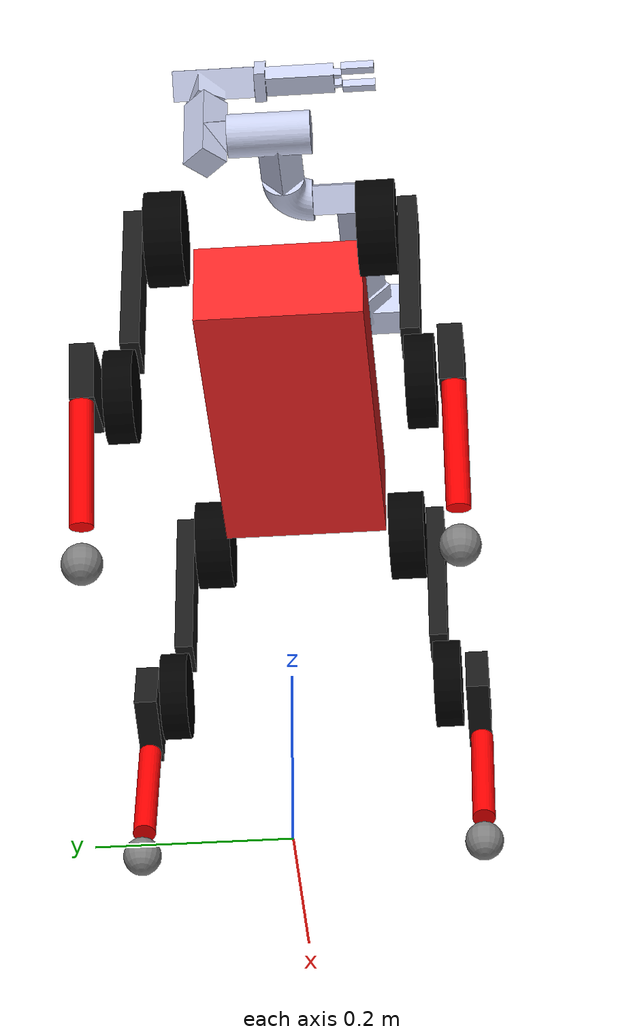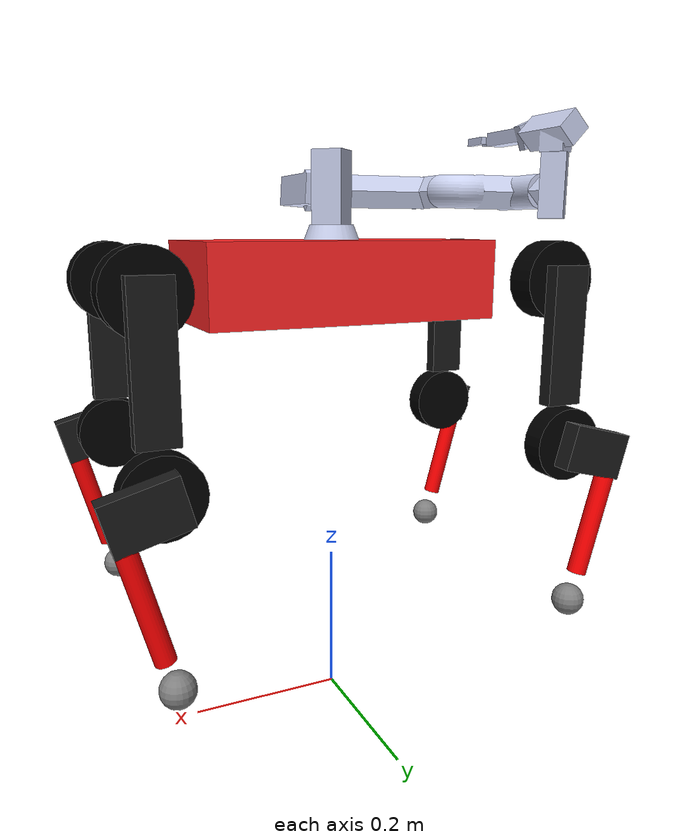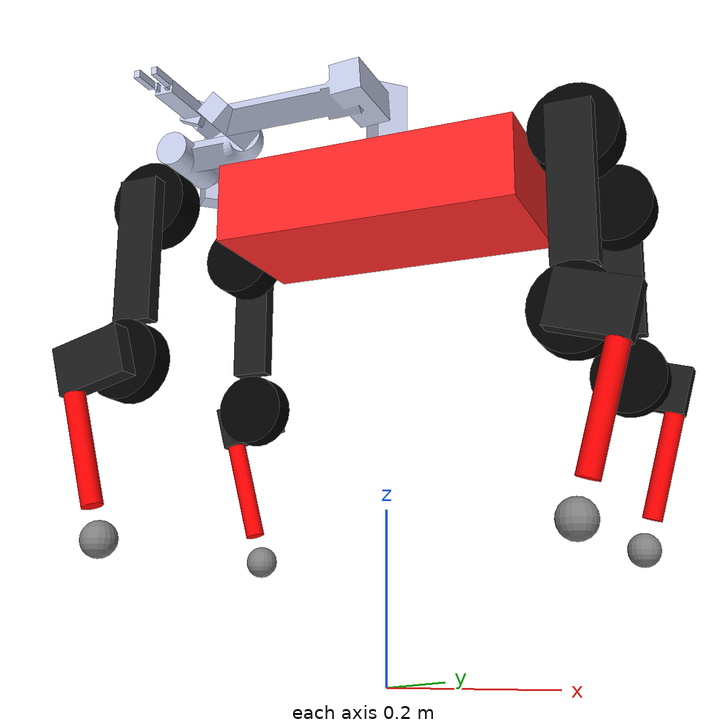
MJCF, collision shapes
<mujoco model="bigreddog">
  <compiler angle="radian" meshdir="meshes"/>

  <default>
    <default class="bigreddog">
      <geom friction="0.4" margin="0.001" condim="1"/>
      <joint damping="0.1" armature="0.01" frictionloss="0.2"/>
      <motor ctrlrange="-20 20"/>
      <default class="hip">
        <joint axis="1 0 0" range="-1.0472 1.0472"/>
        <motor ctrlrange="-20 20"/>
      </default>
      <default class="front_thigh">
        <joint axis="0 1 0" range="0.1 1.57"/>
        <motor ctrlrange="-20 20"/>
      </default>
      <default class="rear_thigh">
        <joint axis="0 1 0" range="-1.57 -0.1"/>
        <motor ctrlrange="-20 20"/>
      </default>
      <default class="front_calf">
        <joint axis="0 1 0" range="-2.7227 -0.3"/>
        <motor ctrlrange="-80 80"/>
      </default>
      <default class="rear_calf">
        <joint axis="0 1 0" range="0.3 2.7227"/>
        <motor ctrlrange="-80 80"/>
      </default>
      <default class="visual">
        <geom type="mesh" contype="0" conaffinity="0" group="2"
          rgba="0.752941 0.752941 0.752941 1"
          density="0"
        />
      </default>
      <default class="collision">
        <geom group="2" type="mesh" rgba="1 0 0 0.3" />
        <default class="foot">
          <geom size="0.022" priority="1" condim="6"
            friction="0.4 0.02 0.01"/>
        </default>
      </default>
    </default>
  </default>
  <asset>
    <mesh name="base_link" file="base_link.STL"/>
    <mesh name="FL_hip_motor" file="FL_hip_motor.STL"/>
    <mesh name="FL_hip_link" file="FL_hip_link.STL"/>
    <mesh name="FL_thigh_motor" file="FL_thigh_motor.STL"/>
    <mesh name="FL_thigh_link" file="FL_thigh_link.STL"/>
    <mesh name="FL_calf_motor" file="FL_calf_motor.STL"/>
    <mesh name="FL_calf_link" file="FL_calf_link.STL"/>
    <mesh name="FR_hip_motor" file="FR_hip_motor.STL"/>
    <mesh name="FR_hip_link" file="FR_hip_link.STL"/>
    <mesh name="FR_thigh_motor" file="FR_thigh_motor.STL"/>
    <mesh name="FR_thigh_link" file="FR_thigh_link.STL"/>
    <mesh name="FR_calf_motor" file="FR_calf_motor.STL"/>
    <mesh name="FR_calf_link" file="FR_calf_link.STL"/>
    <mesh name="RL_hip_motor" file="RL_hip_motor.STL"/>
    <mesh name="RL_hip_link" file="RL_hip_link.STL"/>
    <mesh name="RL_thigh_motor" file="RL_thigh_motor.STL"/>
    <mesh name="RL_thigh_link" file="RL_thigh_link.STL"/>
    <mesh name="RL_calf_motor" file="RL_calf_motor.STL"/>
    <mesh name="RL_calf_link" file="RL_calf_link.STL"/>
    <mesh name="RR_hip_motor" file="RR_hip_motor.STL"/>
    <mesh name="RR_hip_link" file="RR_hip_link.STL"/>
    <mesh name="RR_thigh_motor" file="RR_thigh_motor.STL"/>
    <mesh name="RR_thigh_link" file="RR_thigh_link.STL"/>
    <mesh name="RR_calf_motor" file="RR_calf_motor.STL"/>
    <mesh name="RR_calf_link" file="RR_calf_link.STL"/>
    <mesh name="base_up" file="base_up.STL"/>
    <mesh name="switch" file="switch.STL"/>
    <mesh name="S0_base_link" file="S0_base_link.STL"/>
    <mesh name="S0_base_link_collision" file="S0_base_link_collision.STL"/>
    <mesh name="S0_link1" file="S0_link1.STL"/>
    <mesh name="S0_link1_collision" file="S0_link1_collision.STL"/>
    <mesh name="S0_link2" file="S0_link2.STL"/>
    <mesh name="S0_link2_collision" file="S0_link2_collision.STL"/>
    <mesh name="S0_link3" file="S0_link3.STL"/>
    <mesh name="S0_link3_collision" file="S0_link3_collision.STL"/>
    <mesh name="S0_link4" file="S0_link4.STL"/>
    <mesh name="S0_link4_collision" file="S0_link4_collision.STL"/>
    <mesh name="S0_link5" file="S0_link5.STL"/>
    <mesh name="S0_link5_collision" file="S0_link5_collision.STL"/>
    <mesh name="S0_link6" file="S0_link6.STL"/>
    <mesh name="S0_link6_collision" file="S0_link6_collision.STL"/>
    <mesh name="S0_f1_link" file="S0_f1_link.STL"/>
    <mesh name="S0_f1_collision" file="S0_f1_collision.STL"/>
    <mesh name="S0_f2_link" file="S0_f2_link.STL"/>
    <mesh name="S0_f2_collision" file="S0_f2_collision.STL"/>
  </asset>

  <worldbody>
      <body name="base_link" pos="0 0 0.6" childclass="bigreddog">
        <inertial pos="0.000561536 -1.45402e-05 -0.0238998" quat="0.000157389 0.707722 8.11149e-05 0.706491" mass="7.39" diaginertia="0.061 0.016 0.065" />
        <freejoint />
        <geom type="mesh" contype="0" conaffinity="0" group="1" density="0" rgba="1 0.149 0.149 1" mesh="base_link"/>
        <geom size="0.19 0.09 0.05" pos="0 0 -0.02" type="box" rgba="1 0.149 0.149 1" class="collision"/>
        <site name="imu" pos="0 0 0" />
        <geom pos="0.174988 0.0655 -0.021" quat="1 0 0 0" type="mesh" contype="0" conaffinity="0" group="1" density="0" rgba="0 0 0 1" mesh="FL_hip_motor" class="visual"/>
        <geom pos="0.175 -0.0655 -0.021" quat="1 0 0 0" type="mesh" contype="0" conaffinity="0" group="1" density="0" rgba="0 0 0 1" mesh="FR_hip_motor" class="visual"/>
        <geom pos="-0.175 0.0655 -0.021" quat="1 0 0 0" type="mesh" contype="0" conaffinity="0" group="1" density="0" rgba="0 0 0 1" mesh="RL_hip_motor" class="visual"/>
        <geom pos="-0.175 -0.0655 -0.021" quat="1 0 0 0" type="mesh" contype="0" conaffinity="0" group="1" density="0" rgba="0 0 0 1" mesh="RR_hip_motor" class="visual"/>
        <geom type="mesh" contype="0" conaffinity="0" group="1" density="0" rgba="0.1 0.1 0.1 1" mesh="base_up"/>
        <geom type="mesh" contype="0" conaffinity="0" group="1" density="0" rgba="0.8 0.8 0.8 1" mesh="switch"/>
        <body name="S0_base_link" pos="0 0 0">
          <inertial pos="0.0 0.0 0.02041261" quat="1 0 0 0" mass="0.5" diaginertia="0.00029006 0.00029007 0.00039334"/>
          <geom pos="0 0.000216698 0" quat="1 0 0 0" type="mesh" contype="0" conaffinity="0" group="1" density="0" rgba="0.792157 0.819608 0.933333 1" mesh="S0_base_link"/>
          <geom pos="0 0.000216698 0" quat="1 0 0 0" type="mesh" rgba="0.792157 0.819608 0.933333 1" mesh="S0_base_link_collision" class="collision"/>
        </body>
        <body name="FL_hip_link" pos="0.206488 0.0655 -0.021">
          <inertial pos="0.0543486 0.0443048 4.29565e-05" quat="0.425897 0.43261 0.560175 0.563618" mass="0.69" diaginertia="0.000956635 0.000694228 0.000539661"/>
          <joint name="FL_hip_joint" class="hip"/>
          <geom type="mesh" contype="0" conaffinity="0" group="1" density="0" rgba="0.15 0.15 0.15 1" mesh="FL_hip_link"/>
          <geom pos="0.058719 0.034867 0" quat="1 0 0 0" type="mesh" contype="0" conaffinity="0" group="1" density="0" rgba="0 0 0 1" mesh="FL_thigh_motor"/>
          <geom size="0.05 0.02" pos="0.058719 0.044867 0" quat="0.707388 0.706825 0 0" type="cylinder" rgba="0 0 0 1" class="collision"/>
          <body name="FL_thigh_link" pos="0.058719 0.066367 0">
            <inertial pos="-5.15342e-05 0.0182919 -0.192495" quat="0.70659 0.0219298 -0.0234579 0.706894" mass="1.095" diaginertia="0.00376737 0.00327391 0.000666993"/>
            <joint name="FL_thigh_joint" class="front_thigh"/>
            <geom type="mesh" contype="0" conaffinity="0" group="1" density="0" rgba="0.1 0.1 0.1 1" mesh="FL_thigh_link"/>
            <geom size="0.025 0.01 0.09" pos="0 0.011 -0.07" type="box" rgba="0.1 0.1 0.1 1"/>
            <geom pos="0 0.005 -0.21" quat="1 0 0 0" type="mesh" contype="0" conaffinity="0" group="1" density="0" rgba="0 0 0 1" mesh="FL_calf_motor"/>
            <geom size="0.048 0.015" pos="0 0.02 -0.21" quat="0.707388 0.706825 0 0" type="cylinder" rgba="0 0 0 1" class="collision"/>
            <body name="FL_calf_link" pos="0 0.0365 -0.21">
              <inertial pos="0.0201636 0.0160947 -0.108608" quat="0.643012 0.0672512 0.0436888 0.761646" mass="0.246268" diaginertia="0.0018915 0.00183002 9.60484e-05"/>
              <joint name="FL_calf_joint" class="rear_calf"/>
              <geom type="mesh" contype="0" conaffinity="0" group="1" density="0" rgba="0.1 0.1 0.1 1" mesh="FL_calf_link"/>
              <geom size="0.044 0.0125 0.03" pos="0.024 0.016 -0.0064" quat="0.991445 0 0.130526 0" type="box" rgba="0.1 0.1 0.1 1" class="collision"/>
              <geom size="0.0125 0.0675" pos="0.029 0.0175 -0.108" quat="0.991445 0 0.130526 0" type="cylinder" class="collision"/>
              <geom size="0.021" pos="0 0.0175 -0.21"/>
              <geom size="0.021" pos="0 0.0175 -0.21" contype="0" conaffinity="0" group="1" density="0" rgba="0.2 0.8 0.2 1"/>
            </body>
          </body>
        </body>
        <body name="FR_hip_link" pos="0.2065 -0.0655 -0.021">
          <inertial pos="0.0543388 -0.0445207 4.29565e-05" quat="0.564121 0.560681 0.431981 0.425203" mass="0.69" diaginertia="0.000957012 0.000695892 0.000540947"/>
          <joint name="FR_hip_joint" class="hip"/>
          <geom type="mesh" contype="0" conaffinity="0" group="1" density="0" rgba="0.15 0.15 0.15 1" mesh="FR_hip_link"/>
          <geom pos="0.058707 -0.035133 0" quat="1 0 0 0" type="mesh" contype="0" conaffinity="0" group="1" density="0" rgba="0 0 0 1" mesh="FR_thigh_motor"/>
          <geom size="0.05 0.02" pos="0.058707 -0.045133 0" quat="0.707388 0.706825 0 0" type="cylinder" rgba="0 0 0 1" class="collision"/>
          <body name="FR_thigh_link" pos="0.058707 -0.066633 0">
            <inertial pos="-5.15342e-05 -0.0182919 -0.192495" quat="0.706894 -0.0234579 0.0219298 0.70659" mass="1.095" diaginertia="0.00376737 0.00327391 0.000666993"/>
            <joint name="FR_thigh_joint" class="front_thigh"/>
            <geom type="mesh" contype="0" conaffinity="0" group="1" density="0" rgba="0.1 0.1 0.1 1" mesh="FR_thigh_link"/>
            <geom size="0.025 0.01 0.09" pos="0 -0.011 -0.07" type="box" rgba="0.1 0.1 0.1 1" class="collision"/>
            <geom pos="0 -0.005 -0.21" quat="1 0 0 0" type="mesh" contype="0" conaffinity="0" group="1" density="0" rgba="0 0 0 1" mesh="FR_calf_motor"/>
            <geom size="0.048 0.015" pos="0 -0.02 -0.21" quat="0.707388 0.706825 0 0" type="cylinder" rgba="0 0 0 1" class="collision"/>
            <body name="FR_calf_link" pos="0 -0.0365 -0.21">
              <inertial pos="0.0201636 -0.0160947 -0.108608" quat="0.761646 0.0436888 0.0672512 0.643012" mass="0.246268" diaginertia="0.0018915 0.00183002 9.60484e-05"/>
              <joint name="FR_calf_joint" class="rear_calf"/>
              <geom type="mesh" contype="0" conaffinity="0" group="1" density="0" rgba="0.1 0.1 0.1 1" mesh="FR_calf_link"/>
              <geom size="0.044 0.0125 0.03" pos="0.024 -0.016 -0.0064" quat="0.991445 0 0.130526 0" type="box" rgba="0.1 0.1 0.1 1" class="collision"/>
              <geom size="0.0125 0.0675" pos="0.029 -0.0175 -0.108" quat="0.991445 0 0.130526 0" type="cylinder" class="collision"/>
              <geom size="0.021" pos="0 -0.0175 -0.21"/>
              <geom size="0.021" pos="0 -0.0175 -0.21" contype="0" conaffinity="0" group="1" density="0" rgba="0.2 0.8 0.2 1"/>
            </body>
          </body>
        </body>
        <body name="RL_hip_link" pos="-0.2065 0.0655 -0.021">
          <inertial pos="-0.0543583 0.0443048 4.29565e-05" quat="0.560185 0.563626 0.425885 0.432597" mass="0.69" diaginertia="0.000956709 0.000694287 0.000539645"/>
          <joint name="RL_hip_joint" class="hip"/>
          <geom type="mesh" contype="0" conaffinity="0" group="1" density="0" rgba="0.15 0.15 0.15 1" mesh="RL_hip_link"/>
          <geom pos="-0.058731 0.034867 0" quat="1 0 0 0" type="mesh" contype="0" conaffinity="0" group="1" density="0" rgba="0 0 0 1" mesh="RL_thigh_motor"/>
          <geom size="0.05 0.02" pos="-0.058731 0.044867 0" quat="0.707388 0.706825 0 0" type="cylinder" rgba="0 0 0 1" class="collision"/>
          <body name="RL_thigh_link" pos="-0.058731 0.066367 0">
            <inertial pos="7.79076e-05 0.0182919 -0.192495" quat="0.706887 0.0234228 -0.021965 0.706597" mass="1.095" diaginertia="0.00376737 0.00327391 0.000666993"/>
            <joint name="RL_thigh_joint" class="rear_thigh"/>
            <geom type="mesh" contype="0" conaffinity="0" group="1" density="0" rgba="0.1 0.1 0.1 1" mesh="RL_thigh_link"/>
            <geom size="0.025 0.01 0.09" pos="0 0.011 -0.07" type="box" rgba="0.1 0.1 0.1 1" class="collision"/>
            <geom pos="2.8746e-05 0.005 -0.21" quat="1 0 0 0" type="mesh" contype="0" conaffinity="0" group="1" density="0" rgba="0 0 0 1" mesh="RL_calf_motor"/>
            <geom size="0.048 0.015" pos="2.8746e-05 0.02 -0.21" quat="0.707388 0.706825 0 0" type="cylinder" rgba="0 0 0 1" class="collision"/>
            <body name="RL_calf_link" pos="2.8746e-05 0.0365 -0.21">
              <inertial pos="-0.0201841 0.0160947 -0.108603" quat="0.761306 -0.0435717 -0.0670493 0.643443" mass="0.246268" diaginertia="0.00189158 0.00182984 9.63326e-05"/>
              <joint name="RL_calf_joint" class="rear_calf"/>
              <geom type="mesh" contype="0" conaffinity="0" group="1" density="0" rgba="0.1 0.1 0.1 1" mesh="RL_calf_link"/>
              <geom size="0.044 0.0125 0.03" pos="-0.024 0.016 -0.0064" quat="0.991445 0 -0.130526 0" type="box" rgba="0.1 0.1 0.1 1" class="collision"/>
              <geom size="0.0125 0.0675" pos="-0.029 0.0175 -0.108" quat="0.991445 0 -0.130526 0" type="cylinder" class="collision"/>
              <geom size="0.021" pos="0 0.0175 -0.21"/>
              <geom size="0.021" pos="0 0.0175 -0.21" contype="0" conaffinity="0" group="1" density="0" rgba="0.2 0.8 0.2 1"/>
            </body>
          </body>
        </body>
        <body name="RR_hip_link" pos="-0.205 -0.0655 -0.021">
          <inertial pos="-0.0558583 -0.0444128 4.29565e-05" quat="0.432277 0.425532 0.563882 0.560443" mass="0.69" diaginertia="0.000956935 0.000695146 0.000540279"/>
          <joint name="RR_hip_joint" class="hip"/>
          <geom type="mesh" contype="0" conaffinity="0" group="1" density="0" rgba="0.15 0.15 0.15 1" mesh="RR_hip_link"/>
          <geom pos="-0.060231 -0.035 0" quat="1 0 0 0" type="mesh" contype="0" conaffinity="0" group="1" density="0" rgba="0 0 0 1" mesh="RR_thigh_motor"/>
          <geom size="0.05 0.02" pos="-0.060231 -0.045 0" quat="0.707388 0.706825 0 0" type="cylinder" rgba="0 0 0 1" class="collision"/>
          <body name="RR_thigh_link" pos="-0.060231 -0.0665 0">
            <inertial pos="5.15342e-05 -0.0182919 -0.192495" quat="0.70659 -0.0219298 0.0234579 0.706894" mass="1.095" diaginertia="0.00376737 0.00327391 0.000666993"/>
            <joint name="RR_thigh_joint" class="rear_thigh"/>
            <geom type="mesh" contype="0" conaffinity="0" group="1" density="0" rgba="0.1 0.1 0.1 1" mesh="RR_thigh_link"/>
            <geom size="0.025 0.01 0.09" pos="0 -0.011 -0.07" type="box" rgba="0.1 0.1 0.1 1" class="collision"/>
            <geom pos="0 -0.005 -0.21" quat="1 0 0 0" type="mesh" contype="0" conaffinity="0" group="1" density="0" rgba="0 0 0 1" mesh="RR_calf_motor"/>
            <geom size="0.048 0.015" pos="0 -0.02 -0.21" quat="0.707388 0.706825 0 0" type="cylinder" rgba="0 0 0 1" class="collision"/>
            <body name="RR_calf_link" pos="0 -0.0365 -0.21">
              <inertial pos="-0.0201636 -0.0160947 -0.108608" quat="0.643012 -0.0672512 -0.0436888 0.761646" mass="0.246268" diaginertia="0.0018915 0.00183002 9.60484e-05"/>
              <joint name="RR_calf_joint" class="rear_calf"/>
              <geom type="mesh" contype="0" conaffinity="0" group="1" density="0" rgba="0.1 0.1 0.1 1" mesh="RR_calf_link"/>
              <geom size="0.044 0.0125 0.03" pos="-0.024 -0.016 -0.0064" quat="0.991445 0 -0.130526 0" type="box" rgba="0.1 0.1 0.1 1" class="collision"/>
              <geom size="0.0125 0.0675" pos="-0.029 -0.0175 -0.108" quat="0.991445 0 -0.130526 0" type="cylinder" class="collision"/>
              <geom size="0.021" pos="0 -0.0175 -0.21"/>
              <geom size="0.021" pos="0 -0.0175 -0.21" contype="0" conaffinity="0" group="1" density="0" rgba="0.2 0.8 0.2 1"/>
            </body>
          </body>
        </body>
        <body name="S0_link1" pos="0 0.000216698 0.049">
          <inertial pos="-8.914e-05 -0.00570315 0.0453541" quat="0.999943 -0.00349666 -8.02285e-05 -0.0100646" mass="0.5" diaginertia="0.000399592 0.000369275 0.000224893"/>
          <joint name="S0_link1_joint" pos="0 0 0" axis="0 0 1" range="-3.14 3.14" actuatorfrcrange="-147 147"/>
          <geom type="mesh" contype="0" conaffinity="0" group="1" density="0" rgba="0.792157 0.819608 0.933333 1" mesh="S0_link1"/>
          <geom type="mesh" rgba="0.792157 0.819608 0.933333 1" mesh="S0_link1_collision" class="collision"/>
          <body name="S0_link2" pos="-0.000305445 -0.0390379 0.045">
            <inertial pos="-0.0760633 -0.0444754 0.00043067" quat="0.00807114 0.70848 -0.00847696 0.705634" mass="0.5" diaginertia="0.00308634 0.0029629 0.000277924"/>
            <joint name="S0_link2_joint" pos="0 0 0" axis="0 1 0" range="-3.14 3.14" actuatorfrcrange="-147 147"/>
            <geom type="mesh" contype="0" conaffinity="0" group="1" density="0" rgba="0.792157 0.819608 0.933333 1" mesh="S0_link2"/>
            <geom type="mesh" rgba="0.792157 0.819608 0.933333 1" mesh="S0_link2_collision" class="collision"/>
            <body name="S0_link3" pos="-0.185297 0.000607377 0.000875794">
              <inertial pos="-0.0735986 0.0318119 -0.00120025" quat="0.0664279 0.70177 -0.0686754 0.705967" mass="0.5" diaginertia="0.001033 0.000922937 0.000242157"/>
              <joint name="S0_link3_joint" pos="0 0 0" axis="0 1 0" range="-3.14 3.14" actuatorfrcrange="-147 147"/>
              <geom type="mesh" contype="0" conaffinity="0" group="1" density="0" rgba="0.792157 0.819608 0.933333 1" mesh="S0_link3"/>
              <geom type="mesh" rgba="0.792157 0.819608 0.933333 1" mesh="S0_link3_collision" class="collision"/>
              <body name="S0_link4" pos="-0.108476 0.0826864 -0.00111854">
                <inertial pos="-7.166e-05 0.0210227 0.00458013" quat="0.999684 -0.0165683 0.000196475 0.0188957" mass="0.5" diaginertia="0.000321013 0.000318666 0.00013688"/>
                <joint name="S0_link4_joint" pos="0 0 0" axis="0 1 0" range="-3.14 3.14" actuatorfrcrange="-147 147"/>
                <geom type="mesh" contype="0" conaffinity="0" group="1" density="0" rgba="0.792157 0.819608 0.933333 1" mesh="S0_link4"/>
                <geom type="mesh" rgba="0.792157 0.819608 0.933333 1" mesh="S0_link4_collision" class="collision"/>
                <body name="S0_link5" pos="-9.13167e-05 0.0236071 0.048712">
                  <inertial pos="-6.456e-05 -0.00681396 0.024777" quat="0.727839 0.68573 -0.00354282 0.00347869" mass="0.5" diaginertia="0.000338171 0.00032853 0.000141889"/>
                  <joint name="S0_link5_joint" pos="0 0 0" axis="0 0 1" range="-3.14 3.14" actuatorfrcrange="-147 147"/>
                  <geom type="mesh" contype="0" conaffinity="0" group="1" density="0" rgba="0.792157 0.819608 0.933333 1" mesh="S0_link5"/>
                  <geom type="mesh" rgba="0.792157 0.819608 0.933333 1" mesh="S0_link5_collision" class="collision"/>
                  <body name="S0_link6" pos="-8.44278e-05 -0.0522843 0.0280309">
                    <inertial pos="0.000170142 -0.0338259 -9.77439e-05" quat="0.498432 0.501885 -0.499439 0.500237" mass="0.502" diaginertia="0.000416384 0.000406177 7.61631e-05"/>
                    <joint name="S0_link6_joint" pos="0 0 0" axis="0 1 0" range="-3.14 3.14" actuatorfrcrange="-147 147"/>
                    <geom type="mesh" contype="0" conaffinity="0" group="1" density="0" rgba="0.792157 0.819608 0.933333 1" mesh="S0_link6"/>
                    <geom type="mesh" rgba="0.792157 0.819608 0.933333 1" mesh="S0_link6_collision" class="collision"/>
                    <geom pos="0.0129725 -0.0887996 -0.000303439" quat="1 0 0 0" type="mesh" contype="0" conaffinity="0" group="1" density="0" rgba="0.792157 0.819608 0.933333 1" mesh="S0_f1_link"/>
                    <geom pos="0.0129725 -0.0887996 -0.000303439" quat="1 0 0 0" type="mesh" rgba="0.792157 0.819608 0.933333 1" mesh="S0_f1_collision" class="collision"/>
                    <geom pos="-0.0120534 -0.0888345 0.000382134" quat="1 0 0 0" type="mesh" contype="0" conaffinity="0" group="1" density="0" rgba="0.792157 0.819608 0.933333 1" mesh="S0_f2_link"/>
                    <geom pos="-0.0120534 -0.0888345 0.000382134" quat="1 0 0 0" type="mesh" rgba="0.792157 0.819608 0.933333 1" mesh="S0_f2_collision" class="collision"/>
                  </body>
                </body>
              </body>
            </body>
          </body>
        </body>
    </body>
  </worldbody>

  <actuator>
      <motor class="hip" name="FL_hip" joint="FL_hip_joint" />
      <motor class="front_thigh" name="FL_thigh" joint="FL_thigh_joint" />
      <motor class="front_calf" name="FL_calf" joint="FL_calf_joint" />

      <motor class="hip" name="FR_hip" joint="FR_hip_joint" />
      <motor class="front_thigh" name="FR_thigh" joint="FR_thigh_joint" />
      <motor class="front_calf" name="FR_calf" joint="FR_calf_joint" />

      <motor class="hip" name="RL_hip" joint="RL_hip_joint" />
      <motor class="rear_thigh" name="RL_thigh" joint="RL_thigh_joint" />
      <motor class="rear_calf" name="RL_calf" joint="RL_calf_joint" />

      <motor class="hip" name="RR_hip" joint="RR_hip_joint" />
      <motor class="rear_thigh" name="RR_thigh" joint="RR_thigh_joint" />
      <motor class="rear_calf" name="RR_calf" joint="RR_calf_joint" />

      <motor ctrlrange="-150 150" name="S0_link1" joint="S0_link1_joint" />
      <motor ctrlrange="-150 150" name="S0_link2" joint="S0_link2_joint" />
      <motor ctrlrange="-150 150" name="S0_link3" joint="S0_link3_joint" />
      <motor ctrlrange="-150 150" name="S0_link4" joint="S0_link4_joint" />
      <motor ctrlrange="-150 150" name="S0_link5" joint="S0_link5_joint" />
      <motor ctrlrange="-150 150" name="S0_link6" joint="S0_link6_joint" />

    </actuator>

    <sensor>
      <jointpos name="FL_hip_pos" joint="FL_hip_joint" />
      <jointpos name="FL_thigh_pos" joint="FL_thigh_joint" />
      <jointpos name="FL_calf_pos" joint="FL_calf_joint" />
      <jointpos name="FR_hip_pos" joint="FR_hip_joint" />
      <jointpos name="FR_thigh_pos" joint="FR_thigh_joint" />
      <jointpos name="FR_calf_pos" joint="FR_calf_joint" />
      <jointpos name="RL_hip_pos" joint="RL_hip_joint" />
      <jointpos name="RL_thigh_pos" joint="RL_thigh_joint" />
      <jointpos name="RL_calf_pos" joint="RL_calf_joint" />
      <jointpos name="RR_hip_pos" joint="RR_hip_joint" />
      <jointpos name="RR_thigh_pos" joint="RR_thigh_joint" />
      <jointpos name="RR_calf_pos" joint="RR_calf_joint" />

      <jointpos name="S0_link1_pos" joint="S0_link1_joint" />
      <jointpos name="S0_link2_pos" joint="S0_link2_joint" />
      <jointpos name="S0_link3_pos" joint="S0_link3_joint" />
      <jointpos name="S0_link4_pos" joint="S0_link4_joint" />
      <jointpos name="S0_link5_pos" joint="S0_link5_joint" />
      <jointpos name="S0_link6_pos" joint="S0_link6_joint" />

      <jointvel name="FL_hip_vel" joint="FL_hip_joint" />
      <jointvel name="FL_thigh_vel" joint="FL_thigh_joint" />
      <jointvel name="FL_calf_vel" joint="FL_calf_joint" />
      <jointvel name="FR_hip_vel" joint="FR_hip_joint" />
      <jointvel name="FR_thigh_vel" joint="FR_thigh_joint" />
      <jointvel name="FR_calf_vel" joint="FR_calf_joint" />
      <jointvel name="RL_hip_vel" joint="RL_hip_joint" />
      <jointvel name="RL_thigh_vel" joint="RL_thigh_joint" />
      <jointvel name="RL_calf_vel" joint="RL_calf_joint" />
      <jointvel name="RR_hip_vel" joint="RR_hip_joint" />
      <jointvel name="RR_thigh_vel" joint="RR_thigh_joint" />
      <jointvel name="RR_calf_vel" joint="RR_calf_joint" />

      <jointvel name="S0_link1_vel" joint="S0_link1_joint" />
      <jointvel name="S0_link2_vel" joint="S0_link2_joint" />
      <jointvel name="S0_link3_vel" joint="S0_link3_joint" />
      <jointvel name="S0_link4_vel" joint="S0_link4_joint" />
      <jointvel name="S0_link5_vel" joint="S0_link5_joint" />
      <jointvel name="S0_link6_vel" joint="S0_link6_joint" />

      <jointactuatorfrc name="FL_hip_torque" joint="FL_hip_joint" noise="0.01" />
      <jointactuatorfrc name="FL_thigh_torque" joint="FL_thigh_joint" noise="0.01" />
      <jointactuatorfrc name="FL_calf_torque" joint="FL_calf_joint" noise="0.01" />
      <jointactuatorfrc name="FR_hip_torque" joint="FR_hip_joint" noise="0.01" />
      <jointactuatorfrc name="FR_thigh_torque" joint="FR_thigh_joint" noise="0.01" />
      <jointactuatorfrc name="FR_calf_torque" joint="FR_calf_joint" noise="0.01" />
      <jointactuatorfrc name="RL_hip_torque" joint="RL_hip_joint" noise="0.01" />
      <jointactuatorfrc name="RL_thigh_torque" joint="RL_thigh_joint" noise="0.01" />
      <jointactuatorfrc name="RL_calf_torque" joint="RL_calf_joint" noise="0.01" />
      <jointactuatorfrc name="RR_hip_torque" joint="RR_hip_joint" noise="0.01" />
      <jointactuatorfrc name="RR_thigh_torque" joint="RR_thigh_joint" noise="0.01" />
      <jointactuatorfrc name="RR_calf_torque" joint="RR_calf_joint" noise="0.01" />

      <jointactuatorfrc name="S0_link1_torque" joint="S0_link1_joint" noise="0.01" />
      <jointactuatorfrc name="S0_link2_torque" joint="S0_link2_joint" noise="0.01" />
      <jointactuatorfrc name="S0_link3_torque" joint="S0_link3_joint" noise="0.01" />
      <jointactuatorfrc name="S0_link4_torque" joint="S0_link4_joint" noise="0.01" />
      <jointactuatorfrc name="S0_link5_torque" joint="S0_link5_joint" noise="0.01" />
      <jointactuatorfrc name="S0_link6_torque" joint="S0_link6_joint" noise="0.01" />

      <framequat name="imu_quat" objtype="site" objname="imu" />
      <gyro name="imu_gyro" site="imu" />
      <accelerometer name="imu_acc" site="imu" />

      <framepos name="frame_pos" objtype="site" objname="imu" />
      <framelinvel name="frame_vel" objtype="site" objname="imu" />
      <frameangvel name="frame_ang_vel" objtype="site" objname="imu" />

    </sensor>
</mujoco>
